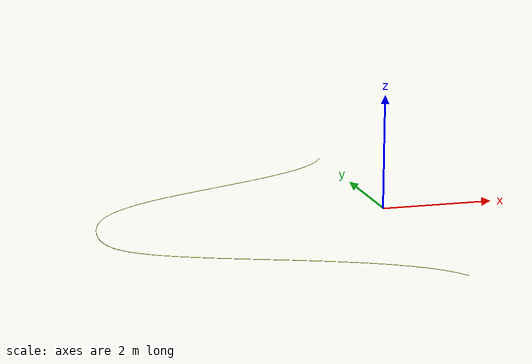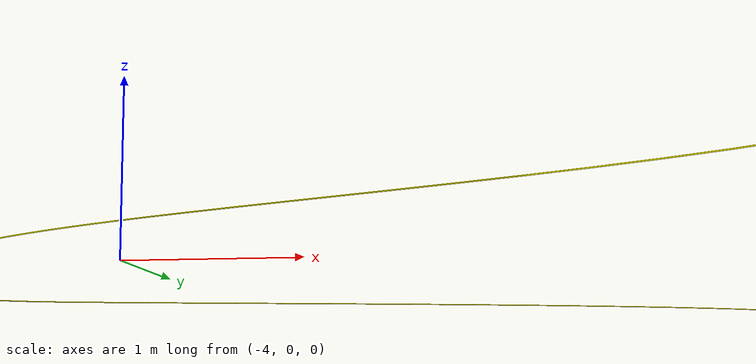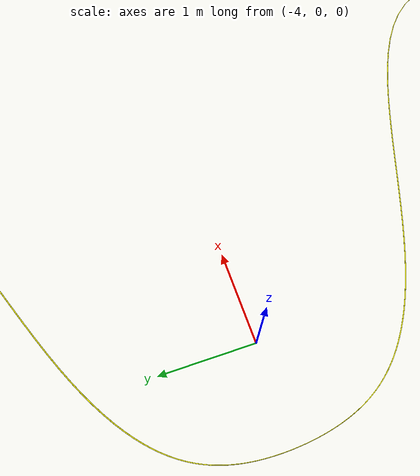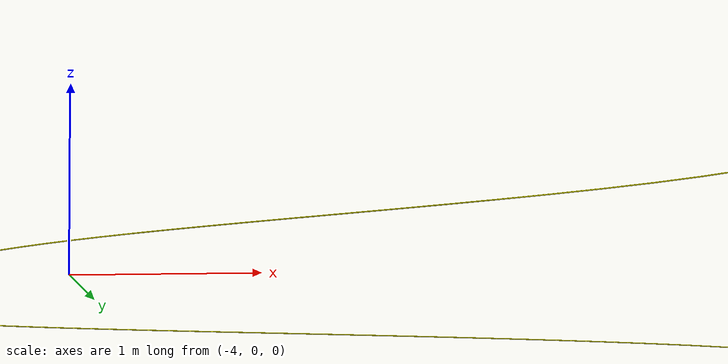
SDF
<?xml version='1.0'?>
<sdf version='1.7'>
  <model name='curved_rope_left'>
    <pose>0 0 0 0 -0 -1.57</pose>
    <static>true</static>

    <link name='link_1'>
      <inertial>
        <mass>1</mass>
        <inertia>
          <ixx>0.166667</ixx>
          <ixy>0</ixy>
          <ixz>0</ixz>
          <iyy>0.166667</iyy>
          <iyz>0</iyz>
          <izz>0.166667</izz>
        </inertia>
        <pose>0 0 0 0 -0 0</pose>
      </inertial>
      <pose>0 0 -0 0 -0 0</pose>
      <gravity>1</gravity>
      <self_collide>0</self_collide>
      <kinematic>0</kinematic>
      <enable_wind>0</enable_wind>

      <visual name='visual'>
        <pose>0 0 0 0 -0 0</pose>
        <geometry>
          <mesh>
            <uri>model://curved_rope_left/meshes/rope_curved.stl</uri>
            <scale>1 1 1</scale>
          </mesh>
        </geometry>

        <material>
          <lighting>1</lighting>
          <script>
            <uri>file://media/materials/scripts/gazebo.material</uri>
            <name>Gazebo/Grey</name>
          </script>
          <shader type='pixel'>
            <normal_map>__default__</normal_map>
          </shader>
          <ambient>1 1 0 0</ambient>
          <diffuse>0.7 0.7 0.7 1</diffuse>
          <specular>0.01 0.01 0.01 1</specular>
          <emissive>0 0 0 1</emissive>
        </material>
        <transparency>0</transparency>
        <cast_shadows>1</cast_shadows>
      </visual>

      <collision name='collision'>
        <laser_retro>0</laser_retro>
        <max_contacts>10</max_contacts>
        <pose>0 0 0 0 -0 0</pose>
        <geometry>
          <mesh>
            <uri>model://curved_rope_left/meshes/rope_curved.stl</uri>
            <scale>1 1 1</scale>
          </mesh>
        </geometry>
      </collision>
    </link>

    <allow_auto_disable>1</allow_auto_disable>
  </model>
</sdf>
